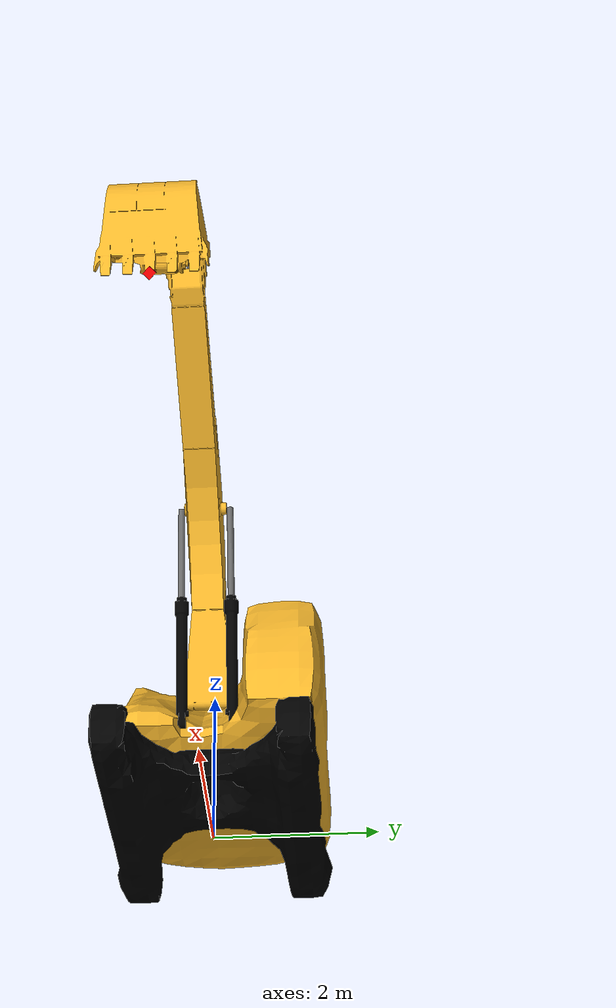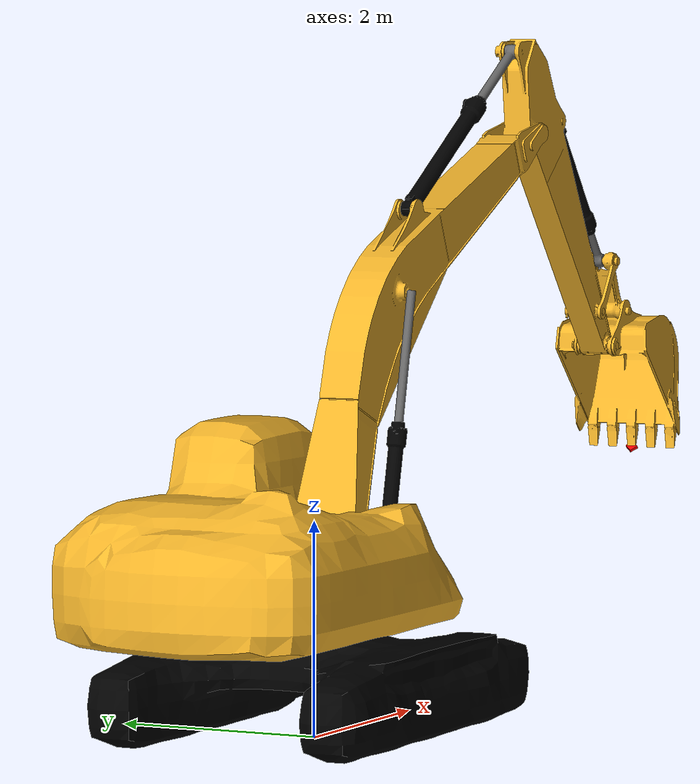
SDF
<?xml version="1.0"?>
<!--
  Copyright 2024 DeepX, Inc. All rights reserved

  Backhoe excavator model for Hitachi ZX200.
  This model adds controls to the base one.
-->
<sdf version="1.9">
  <model name='zx200'>
    <include merge="true">
      <uri>zx200_base</uri>
    </include>
    <plugin
      filename="gz-sim-joint-position-controller-system"
      name="gz::sim::systems::JointPositionController">
      <joint_name>body_joint</joint_name>
      <p_gain>1e6</p_gain>
      <i_gain>1</i_gain>
      <d_gain>1e6</d_gain>
      <i_max>10</i_max>
      <i_min>-10</i_min>
      <cmd_max>1e8</cmd_max>
      <cmd_min>-1e8</cmd_min>
    </plugin>

    <plugin
      filename="gz-sim-joint-position-controller-system"
      name="gz::sim::systems::JointPositionController">
      <joint_name>boom_joint</joint_name>
      <p_gain>1e7</p_gain>
      <i_gain>1</i_gain>
      <d_gain>2e6</d_gain>
      <i_max>10</i_max>
      <i_min>-10</i_min>
      <cmd_max>1e8</cmd_max>
      <cmd_min>-1e8</cmd_min>
    </plugin>

    <plugin
      filename="gz-sim-joint-position-controller-system"
      name="gz::sim::systems::JointPositionController">
      <joint_name>arm_joint</joint_name>
      <p_gain>1e8</p_gain>
      <i_gain>0.1</i_gain>
      <d_gain>1e6</d_gain>
      <i_max>10</i_max>
      <i_min>-10</i_min>
      <cmd_max>2.166e9</cmd_max>
      <cmd_min>-1e9</cmd_min>
    </plugin>

    <plugin
      filename="gz-sim-joint-position-controller-system"
      name="gz::sim::systems::JointPositionController">
      <joint_name>bucket_joint</joint_name>
      <p_gain>1e6</p_gain>
      <i_gain>0.5</i_gain>
      <d_gain>1e4</d_gain>
      <i_max>1</i_max>
      <i_min>-1</i_min>
      <cmd_max>2.3657e5</cmd_max>
      <cmd_min>-1e5</cmd_min>
    </plugin>

    <plugin name="gz::sim::systems::TrackedVehicle" filename="gz-sim-tracked-vehicle-system">
      <left_track>
        <link>left_track</link>
      </left_track><!--define-->
      <right_track>
        <link>right_track</link>
      </right_track><!--define-->
      <tracks_separation>2.16</tracks_separation><!--edit-->
      <tracks_height>2.0</tracks_height><!--edit-->
      <steering_efficiency>0.5</steering_efficiency><!--edit-->
    </plugin>

    <plugin name='gz::sim::systems::TrackController' filename='gz-sim-track-controller-system'>
      <link>left_track</link>
      <min_velocity>-3.25</min_velocity>
      <max_velocity>3.25</max_velocity>
    </plugin>
    <plugin name='gz::sim::systems::TrackController' filename='gz-sim-track-controller-system'>
      <link>right_track</link>
      <min_velocity>-3.25</min_velocity>
      <max_velocity>3.25</max_velocity>
    </plugin>

    <!-- Moving Forward: W -->
    <plugin filename="gz-sim-triggered-publisher-system"
      name="gz::sim::systems::TriggeredPublisher">
      <input type="gz.msgs.Int32" topic="/keyboard/keypress">
        <match field="data">87</match>
      </input>
      <output type="gz.msgs.Twist" topic="/model/zx200/cmd_vel">
        linear: {x: 3.25}, angular: {z: 0.0}
      </output>
    </plugin>

    <!-- Moving Backward: X -->
    <plugin filename="gz-sim-triggered-publisher-system"
      name="gz::sim::systems::TriggeredPublisher">
      <input type="gz.msgs.Int32" topic="/keyboard/keypress">
        <match field="data">88</match>
      </input>
      <output type="gz.msgs.Twist" topic="/model/zx200/cmd_vel">
        linear: {x: -3.25}, angular: {z: 0.0}
      </output>
    </plugin>

    <!-- Stop: S -->
    <plugin filename="gz-sim-triggered-publisher-system"
      name="gz::sim::systems::TriggeredPublisher">
      <input type="gz.msgs.Int32" topic="/keyboard/keypress">
        <match field="data">83</match>
      </input>
      <output type="gz.msgs.Twist" topic="/model/zx200/cmd_vel">
        linear: {x: 0.0}, angular: {z: 0.0}
      </output>
    </plugin>

    <!-- Left: A -->
    <plugin filename="gz-sim-triggered-publisher-system"
      name="gz::sim::systems::TriggeredPublisher">
      <input type="gz.msgs.Int32" topic="/keyboard/keypress">
        <match field="data">65</match>
      </input>
      <output type="gz.msgs.Twist" topic="/model/zx200/cmd_vel">
        linear: {x: 0.0}, angular: {z: 1.0}
      </output>
    </plugin>

    <!-- Right: D -->
    <plugin filename="gz-sim-triggered-publisher-system"
      name="gz::sim::systems::TriggeredPublisher">
      <input type="gz.msgs.Int32" topic="/keyboard/keypress">
        <match field="data">68</match>
      </input>
      <output type="gz.msgs.Twist" topic="/model/zx200/cmd_vel">
        linear: {x: 0.0}, angular: {z: -1.0}
      </output>
    </plugin>

    <!-- Forward Left: Q -->
    <plugin filename="gz-sim-triggered-publisher-system"
      name="gz::sim::systems::TriggeredPublisher">
      <input type="gz.msgs.Int32" topic="/keyboard/keypress">
        <match field="data">81</match>
      </input>
      <output type="gz.msgs.Twist" topic="/model/zx200/cmd_vel">
        linear: {x: 1.0}, angular: {z: 1.0}
      </output>
    </plugin>

    <!-- Forward Right: E -->
    <plugin filename="gz-sim-triggered-publisher-system"
      name="gz::sim::systems::TriggeredPublisher">
      <input type="gz.msgs.Int32" topic="/keyboard/keypress">
        <match field="data">69</match>
      </input>
      <output type="gz.msgs.Twist" topic="/model/zx200/cmd_vel">
        linear: {x: 1.0}, angular: {z: -1.0}
      </output>
    </plugin>

    <!-- Back Left: Z -->
    <plugin filename="gz-sim-triggered-publisher-system"
      name="gz::sim::systems::TriggeredPublisher">
      <input type="gz.msgs.Int32" topic="/keyboard/keypress">
        <match field="data">90</match>
      </input>
      <output type="gz.msgs.Twist" topic="/model/zx200/cmd_vel">
        linear: {x: -3.25}, angular: {z: 1.0}
      </output>
    </plugin>

    <!-- Back Right: C -->
    <plugin filename="gz-sim-triggered-publisher-system"
      name="gz::sim::systems::TriggeredPublisher">
      <input type="gz.msgs.Int32" topic="/keyboard/keypress">
        <match field="data">67</match>
      </input>
      <output type="gz.msgs.Twist" topic="/model/zx200/cmd_vel">
        linear: {x: -3.25}, angular: {z: -1.0}
      </output>
    </plugin>

  </model>
</sdf>

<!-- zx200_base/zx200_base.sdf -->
<!--
  Copyright 2024 DeepX, Inc. All rights reserved
-->
<sdf version="1.9">
  <model name='zx200_base'>
    <pose>0 0 0 0 0 0</pose>
    <link name='caterpillar_link'>
      <pose>0 0 0 0 0 0</pose>
      <inertial>
        <pose>-0.174 -0.0015 0.44 0 0 0</pose>
        <mass>5000</mass>
        <inertia>
          <ixx>2000</ixx>
          <ixy>0</ixy>
          <ixz>0</ixz>
          <iyy>4000</iyy>
          <iyz>0</iyz>
          <izz>6000</izz>
        </inertia>
      </inertial>
      <visual name='caterpillar_visual'>
        <geometry>
          <mesh>
            <uri>./meshes/caterpillar.obj</uri>
          </mesh>
        </geometry>
        <material>
          <ambient>0.0 0.0 0.0 1.0</ambient>
          <diffuse>0.0 0.0 0.0 1.0</diffuse>
          <specular>0.2 0.2 0.2 1.0</specular>
        </material>
      </visual>
    </link>

    <joint name='body_joint' type='revolute'>
      <pose relative_to='caterpillar_link'>0 0 0.9069 0 0 0</pose>
      <parent>caterpillar_link</parent>
      <child>body_link</child>
      <axis>
        <xyz>0 0 1</xyz>
        <limit>
          <!--Effort
          to avoid velocity control violating the kinematics!-->
          <effort>1.0e8</effort>
          <velocity>0.2</velocity>
        </limit>
      </axis>
    </joint>

    <link name='body_link'>
      <pose relative_to='body_joint'>0 0 0 0 0 0</pose>
      <inertial>
        <pose>0.43968 0.8174 1.3546 0 0 0</pose>
        <mass>7000</mass>
        <inertia>
          <ixx>4751.6</ixx>
          <ixy>-127.4</ixy>
          <ixz>348.5</ixz>
          <iyy>5734.1</iyy>
          <iyz>-68.7</iyz>
          <izz>9065.9</izz>
        </inertia>
      </inertial>
      <visual name='body_visual'>
        <geometry>
          <mesh>
            <uri>./meshes/body.obj</uri>
          </mesh>
        </geometry>
        <material>
          <ambient>0.953 0.707 0.164 1.0</ambient>
          <diffuse>0.953 0.707 0.164 1.0</diffuse>
          <specular>0.2 0.2 0.2 1.0</specular>
        </material>
      </visual>
    </link>
    <joint name='boom_joint' type='revolute'>
      <pose relative_to='body_joint'>0.18 -0.04 0.93 0 -0.7 0</pose>
      <parent>body_link</parent>
      <child>boom_link</child>
      <axis>
        <xyz>0 1 0</xyz>
        <limit>
          <!--Effort to avoid velocity control violating the kinematics!-->
          <effort>1.0e8</effort>
          <velocity>0.6159937255</velocity>
          <lower>-0.5</lower>
          <upper>1.20</upper>
        </limit>
      </axis>
    </joint>

    <link name='boom_link'>
      <pose relative_to='boom_joint'>0 0 0 0 0 0</pose>
      <inertial>
        <pose>2.6876 0.0064 0.5874 0 0 0</pose>
        <mass>1010</mass>
        <inertia>
          <ixx>103.9</ixx>
          <ixy>0.0</ixy>
          <ixz>44.8</ixz>
          <iyy>1574.1</iyy>
          <iyz>0.0</iyz>
          <izz>1489.6</izz>
        </inertia>
      </inertial>
      <visual name='boom_visual'>
        <geometry>
          <mesh>
            <uri>./meshes/boom.obj</uri>
          </mesh>
        </geometry>
        <material>
          <ambient>0.953 0.707 0.164 1.0</ambient>
          <diffuse>0.953 0.707 0.164 1.0</diffuse>
          <specular>0.2 0.2 0.2 1.0</specular>
        </material>
      </visual>
      <collision name="boom_collision">
        <geometry>
          <mesh>
            <uri>./meshes/boom_collision.obj</uri>
          </mesh>
        </geometry>
      </collision>
    </link>

    <joint name='boom_cylinder_joint' type='revolute'>
      <pose relative_to='body_joint'>0.664 0.0 0.325 0 -1.342 0</pose>
      <parent>body_link</parent>
      <child>boom_cylinder_link</child>
      <axis>
        <xyz>0 -1 0</xyz>
      </axis>
    </joint>

    <link name='boom_cylinder_link'>
      <pose relative_to='boom_cylinder_joint'>0 0 0 0 0 0</pose>
      <inertial>
        <pose>0.6635 -0.03153 0.577 0 0 0</pose>
        <mass>131.62</mass>
        <inertia>
          <ixx>9.216249</ixx>
          <ixy>0</ixy>
          <ixz>0</ixz>
          <iyy>27.606432</iyy>
          <iyz>0</iyz>
          <izz>36.503907</izz>
        </inertia>
      </inertial>
      <visual name='boom_cylinder_visual'>
        <geometry>
          <mesh>
            <uri>./meshes/boom_cylinders.obj</uri>
          </mesh>
        </geometry>
        <material>
          <ambient>0.0 0.0 0.0 1.0</ambient>
          <diffuse>0.0 0.0 0.0 1.0</diffuse>
          <specular>0.2 0.2 0.2 1.0</specular>
        </material>
      </visual>
    </link>

    <joint name='boom_piston_joint' type='prismatic'>
      <pose relative_to='boom_cylinder_joint'>1.302 0.0 0 0 0 0</pose>
      <parent>boom_cylinder_link</parent>
      <child>boom_piston_link</child>
      <axis>
        <xyz>1 0 0</xyz>
      </axis>
    </joint>

    <link name='boom_piston_link'>
      <pose relative_to='boom_piston_joint'>0 0 0 0 0 0</pose>
      <inertial>
        <pose>0.8046 -0.0389 0 0 0 0</pose>
        <mass>78.08</mass>
        <inertia>
          <ixx>6.6836</ixx>
          <ixy>0</ixy>
          <ixz>0</ixz>
          <iyy>22.5995</iyy>
          <iyz>0</iyz>
          <izz>29.2292</izz>
        </inertia>
      </inertial>
      <visual name='boom_piston_visual'>
        <geometry>
          <mesh>
            <uri>./meshes/boom_pistons.obj</uri>
          </mesh>
        </geometry>
        <material>
          <ambient>0.4 0.4 0.4 1.0</ambient>
          <diffuse>0.4 0.4 0.4 1.0</diffuse>
          <specular>1.0 1.0 1.0 1.0</specular>
        </material>
      </visual>
    </link>

    <joint name='boom_piston_constraint' type='ball'>
      <pose relative_to='boom_cylinder_joint'>2.768 0 0 0 0 0</pose>
      <parent>boom_piston_link</parent>
      <child>boom_link</child>
    </joint>

    <joint name='arm_joint' type='revolute'>
      <pose relative_to='boom_joint'>5.68 0 0 0 1.570796 0</pose>
      <parent>boom_link</parent>
      <child>arm_link</child>
      <axis>
        <xyz>0 1 0</xyz>
        <limit>
          <!--Effort
          to avoid velocity control violating the kinematics!-->
          <effort>1.0e8</effort>
          <velocity>0.5</velocity>
          <lower>-1.05</lower>
          <upper>1.14</upper>
        </limit>
      </axis>
    </joint>

    <link name='arm_link'>
      <pose relative_to='arm_joint'>0 0 0 0 0 0</pose>
      <inertial>
        <pose>0.2075 0.0 -0.9177 0 0 0</pose>
        <mass>480</mass>
        <inertia>
          <ixx>14.24</ixx>
          <ixy>0.0</ixy>
          <ixz>31.36</ixz>
          <iyy>319.92</iyy>
          <iyz>0.0</iyz>
          <izz>309.47</izz>
        </inertia>
      </inertial>
      <visual name='arm_visual'>
        <geometry>
          <mesh>
            <uri>./meshes/arm.obj</uri>
          </mesh>
        </geometry>
        <material>
          <ambient>0.953 0.707 0.164 1.0</ambient>
          <diffuse>0.953 0.707 0.164 1.0</diffuse>
          <specular>0.2 0.2 0.2 1.0</specular>
        </material>
      </visual>
      <collision name="arm_collision">
        <geometry>
          <mesh>
            <uri>./meshes/arm_collision.obj</uri>
          </mesh>
        </geometry>
      </collision>
    </link>

    <joint name='arm_cylinder_joint' type='revolute'>
      <pose relative_to='boom_joint'>3.245 0 1.1624 0 0.1361 0</pose>
      <parent>boom_link</parent>
      <child>arm_cylinder_link</child>
      <axis>
        <xyz>0 1 0</xyz>
      </axis>
    </joint>

    <link name='arm_cylinder_link'>
      <pose relative_to="arm_cylinder_joint">0 0 0 0 0 0</pose>
      <inertial>
        <pose>0.9761 0.0 -0.1213 0 0 0</pose>
        <mass>65.81</mass>
        <inertia>
          <ixx>0.1</ixx>
          <ixy>0.0</ixy>
          <ixz>0.0</ixz>
          <iyy>9.95</iyy>
          <iyz>0.0</iyz>
          <izz>9.95</izz>
        </inertia>
      </inertial>
      <visual name='arm_cylinder_visual'>
        <geometry>
          <mesh>
            <uri>./meshes/arm_cylinder.obj</uri>
          </mesh>
        </geometry>
        <material>
          <ambient>0.0 0.0 0.0 1.0</ambient>
          <diffuse>0.0 0.0 0.0 1.0</diffuse>
          <specular>0.2 0.2 0.2 1.0</specular>
        </material>
      </visual>
    </link>

    <joint name='arm_piston_joint' type='prismatic'>
      <pose relative_to="arm_cylinder_joint">0.91 0.0 0 0 0 0</pose>
      <parent>arm_cylinder_link</parent>
      <child>arm_piston_link</child>
      <axis>
        <xyz>1 0 0</xyz>
        <limit>
          <!--Effort
          to avoid velocity control violating the kinematics!-->
          <effort>1e8</effort>
          <lower>-0.85567</lower>
          <upper>0.93719</upper>
        </limit>
      </axis>
    </joint>

    <link name='arm_piston_link'>
      <pose relative_to="arm_piston_joint">0 0 0 0 0 0</pose>
      <inertial>
        <pose>1.045 0.0 0.0 0 0 0</pose>
        <mass>48.18</mass>
        <inertia>
          <ixx>0.01</ixx>
          <ixy>0.0</ixy>
          <ixz>0.0</ixz>
          <iyy>9.83</iyy>
          <iyz>0.0</iyz>
          <izz>9.83</izz>
        </inertia>
      </inertial>
      <visual name='arm_piston_visual'>
        <geometry>
          <mesh>
            <uri>./meshes/arm_piston.obj</uri>
          </mesh>
        </geometry>
        <material>
          <ambient>0.4 0.4 0.4 1.0</ambient>
          <diffuse>0.4 0.4 0.4 1.0</diffuse>
          <specular>1.0 1.0 1.0 1.0</specular>
        </material>
      </visual>
    </link>

    <joint name='arm_piston_joint_constraint' type='ball'>
      <pose relative_to="arm_cylinder_joint">2.80 0 0 0 0 0</pose>
      <parent>arm_piston_link</parent>
      <child>arm_link</child>
    </joint>

    <joint name='bucket_joint' type='revolute'>
      <pose relative_to="arm_joint">2.915 0 0 0 0 0</pose>
      <parent>arm_link</parent>
      <child>bucket_link</child>
      <axis>
        <xyz>0 1 0</xyz>
        <limit>
          <!--Effort
          to avoid velocity control violating the kinematics!-->
          <effort>1e8</effort>
          <velocity>0.5</velocity>
          <lower>-0.216</lower>
          <upper>2.45</upper>
        </limit>
      </axis>
    </joint>

    <link name='bucket_link'>
      <pose relative_to="bucket_joint">0 0 0 0 0 0</pose>
      <inertial>
        <pose>0.602 0.0 0.417 0 0 0</pose>
        <mass>351.5</mass>
        <inertia>
          <ixx>51.39</ixx>
          <ixy>0.0</ixy>
          <ixz>10.40</ixz>
          <iyy>77.64</iyy>
          <iyz>0.0</iyz>
          <izz>91.99</izz>
        </inertia>
      </inertial>
      <visual name='bucket_visual'>
        <geometry>
          <mesh>
            <uri>./meshes/bucket.obj</uri>
          </mesh>
        </geometry>
        <material>
          <ambient>0.953 0.707 0.164 1.0</ambient>
          <diffuse>0.953 0.707 0.164 1.0</diffuse>
          <specular>0.2 0.2 0.2 1.0</specular>
        </material>
      </visual>
      <collision name="bucket_collision">
        <geometry>
          <mesh>
            <uri>./meshes/bucket_collision.obj</uri>
          </mesh>
        </geometry>
      </collision>
    </link>

    <joint name='bucket_end_joint' type='fixed'>
      <pose relative_to="bucket_joint">0 0 1.23 0 0.872664625997 0</pose>
      <parent>bucket_link</parent>
      <child>bucket_end_link</child>
    </joint>

      <link name='bucket_end_link'>
        <pose relative_to="bucket_end_joint">0 0 0 0 0 0</pose>
        <inertial>
          <mass>0.001</mass>
          <inertia>
            <ixx>1e-6</ixx>
            <ixy>0.0</ixy>
            <ixz>0.0</ixz>
            <iyy>1e-6</iyy>
            <iyz>0.0</iyz>
            <izz>1e-6</izz>
          </inertia>
        </inertial>
      </link>

    <joint name='bucket_cylinder_joint' type='revolute'>
      <pose relative_to="arm_joint">0.42 0.0 0.665 0 0.02618 0</pose>
      <parent>arm_link</parent>
      <child>bucket_cylinder_link</child>
      <axis>
        <xyz>0 1 0</xyz>
      </axis>
    </joint>

    <link name='bucket_cylinder_link'>
      <pose relative_to="bucket_cylinder_joint">0 0 0 0 0 0</pose>
      <inertial>
        <pose>0.7903 0 0.04 0 0 0</pose>
        <mass>65.81</mass>
        <inertia>
          <ixx>0.1</ixx>
          <ixy>0.0</ixy>
          <ixz>0.0</ixz>
          <iyy>9.95</iyy>
          <iyz>0.0</iyz>
          <izz>9.95</izz>
        </inertia>
      </inertial>
      <visual name='bucket_cylinder_visual'>
        <geometry>
          <mesh>
            <uri>./meshes/bucket_cylinder.obj</uri>
          </mesh>
        </geometry>
        <material>
          <ambient>0.0 0.0 0.0 1.0</ambient>
          <diffuse>0.0 0.0 0.0 1.0</diffuse>
          <specular>0.2 0.2 0.2 1.0</specular>
        </material>
      </visual>
    </link>

    <joint name='bucket_piston_joint' type='prismatic'>
      <pose relative_to="bucket_cylinder_joint">0.43 0 0 0 0 0</pose>
      <parent>bucket_cylinder_link</parent>
      <child>bucket_piston_link</child>
      <axis>
        <xyz>1 0 0</xyz>
        <limit>
          <!--Effort
          to avoid velocity control violating the kinematics!-->
          <effort>1e8</effort>
          <lower>-0.08</lower>
          <upper>1.035</upper>
        </limit>
      </axis>
    </joint>

    <link name='bucket_piston_link'>
      <pose relative_to="bucket_piston_joint">0 0 0 0 0 0</pose>
      <inertial>
        <pose>0.8293 0.0 0.0 0 0 0</pose>
        <mass>48.19</mass>
        <inertia>
          <ixx>0.01</ixx>
          <ixy>0.0</ixy>
          <ixz>0.0</ixz>
          <iyy>9.83</iyy>
          <iyz>0.0</iyz>
          <izz>9.83</izz>
        </inertia>
      </inertial>
      <visual name='bucker_piston_visual'>
        <geometry>
          <mesh>
            <uri>./meshes/bucket_piston.obj</uri>
          </mesh>
        </geometry>
        <material>
          <ambient>0.4 0.4 0.4 1.0</ambient>
          <diffuse>0.4 0.4 0.4 1.0</diffuse>
          <specular>1.0 1.0 1.0 1.0</specular>
        </material>
      </visual>
    </link>

    <joint name='bucket_piston_constraint' type='ball'>
      <pose relative_to='bucket_cylinder_joint'>1.866 0 0 0 0 0</pose>
      <parent>bucket_piston_link</parent>
      <child>bucket_h_linkage_link</child>
    </joint>

    <joint name='bucket_side_linkage_joint' type='revolute'>
      <pose relative_to='arm_joint'>2.4675 0 0.0397 0 -1.8437 0</pose>
      <parent>arm_link</parent>
      <child>bucket_side_linkage_link</child>
      <axis>
        <xyz>0 -1 0</xyz>
      </axis>
    </joint>

    <link name='bucket_side_linkage_link'>
      <pose relative_to='bucket_side_linkage_joint'>0 0 0 0 0 0</pose>
      <inertial>
        <pose>-0.095 0.0 0.2829 0 0 0</pose>
        <mass>16.3471</mass>
        <inertia>
          <ixx>0.2849</ixx>
          <ixy>0</ixy>
          <ixz>0</ixz>
          <iyy>0.7623</iyy>
          <iyz>0</iyz>
          <izz>1.0241</izz>
        </inertia>
      </inertial>
      <visual name='bucket_side_linkage_visual'>
        <geometry>
          <mesh>
            <uri>./meshes/bucket_linkages_side.obj</uri>
          </mesh>
        </geometry>
        <material>
          <ambient>0.953 0.707 0.164 1.0</ambient>
          <diffuse>0.953 0.707 0.164 1.0</diffuse>
          <specular>0.2 0.2 0.2 1.0</specular>
        </material>
      </visual>
    </link>

    <joint name='bucket_h_linkage_joint' type='revolute'>
      <pose relative_to='bucket_cylinder_joint'>1.87 0 0 0 0.24 0</pose>
      <parent>bucket_side_linkage_link</parent>
      <child>bucket_h_linkage_link</child>
      <axis>
        <xyz>0 1 0</xyz>
      </axis>
    </joint>

    <link name='bucket_h_linkage_link'>
      <pose relative_to='bucket_h_linkage_joint'>0 0 0 0 0 0</pose>
      <inertial>
        <pose>0.0 -0.254500 0.0 0 0 0</pose>
        <mass>57.45</mass>
        <inertia>
          <ixx>0.29</ixx>
          <ixy>0.0</ixy>
          <ixz>0.0</ixz>
          <iyy>1.63</iyy>
          <iyz>0.0</iyz>
          <izz>1.88</izz>
        </inertia>
      </inertial>
      <visual name='bucket_h_linkage_visual'>
        <geometry>
          <mesh>
            <uri>./meshes/bucket_linkage_H_link.obj</uri>
          </mesh>
        </geometry>
        <material>
          <ambient>0.953 0.707 0.164 1.0</ambient>
          <diffuse>0.953 0.707 0.164 1.0</diffuse>
          <specular>0.2 0.2 0.2 1.0</specular>
        </material>
      </visual>
    </link>

    <joint name='bucket_linkage_constraint' type='ball'>
      <pose relative_to='bucket_joint'>-0.075 0 0.470 0 0 0</pose>
      <parent>bucket_h_linkage_link</parent>
      <child>bucket_link</child>
    </joint>

    <joint name='tooth_joint' type='fixed'>
      <pose relative_to="bucket_joint">1.473 0 0 0 0 0</pose>
      <parent>bucket_link</parent>
      <child>tooth_link</child>
    </joint>

    <link name='tooth_link'>
      <pose relative_to="tooth_joint">0 0 0 0 0 0</pose>
      <inertial>
        <mass>0.001</mass>
        <inertia>
          <ixx>1e-6</ixx>
          <ixy>0.0</ixy>
          <ixz>0</ixz>
          <iyy>1e-6</iyy>
          <iyz>0.0</iyz>
          <izz>1e-6</izz>
        </inertia>
      </inertial>
      <visual name='tooth_visual'>
        <pose relative_to="tooth_joint">0 0 0 -0.785398 0 0</pose>
        <geometry>
          <box>
            <size>0.03 0.09 0.1</size>
          </box>
        </geometry>
        <material>
          <ambient>1 0 0 1.0</ambient>
          <diffuse>1 0 0 1.0</diffuse>
          <specular>0.2 0.2 0.2 1.0</specular>
        </material>
      </visual>
    </link>

    <link name='left_track'>
      <pose>0 0.965 0.35 0 0 0</pose>
      <gravity>1</gravity>
      <kinematic>0</kinematic>
      <!-- Debug visual -->

      <collision name='left_track_collision'>
        <pose>0 0 0 0 0 0</pose>
        <geometry>
          <box>
            <size>3.6 0.6 0.7</size>
          </box>
        </geometry>
        <surface>
          <friction>
            <ode>
              <mu>0.7</mu>
              <mu2>150</mu2>
              <fdir1>0 1 0</fdir1>
            </ode>
          </friction>
        </surface>
      </collision>
    </link>

    <link name='right_track'>
      <pose>0 -0.965 0.35 0 0 0</pose>
      <gravity>1</gravity>
      <kinematic>0</kinematic>
      <!-- Debug visual -->

      <collision name='right_track_collision'>
        <pose>0 0 0 0 0 0</pose>
        <geometry>
          <box>
            <size>3.6 0.6 0.7</size>
          </box>
        </geometry>
        <surface>
          <friction>
            <ode>
              <mu>0.7</mu>
              <mu2>150</mu2>
              <fdir1>0 1 0</fdir1>
            </ode>
          </friction>
        </surface>
      </collision>
    </link>

    <joint name='left_track_j' type='fixed'>
      <child>left_track</child>
      <parent>caterpillar_link</parent>
    </joint>
    <joint name='right_track_j' type='fixed'>
      <child>right_track</child>
      <parent>caterpillar_link</parent>
    </joint>

  </model>
</sdf>
